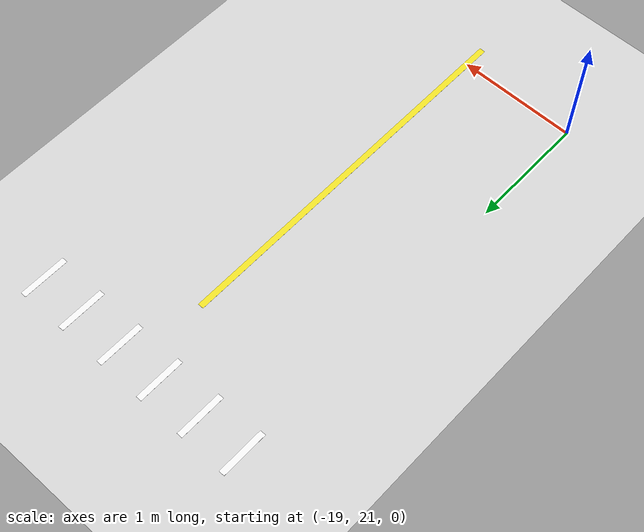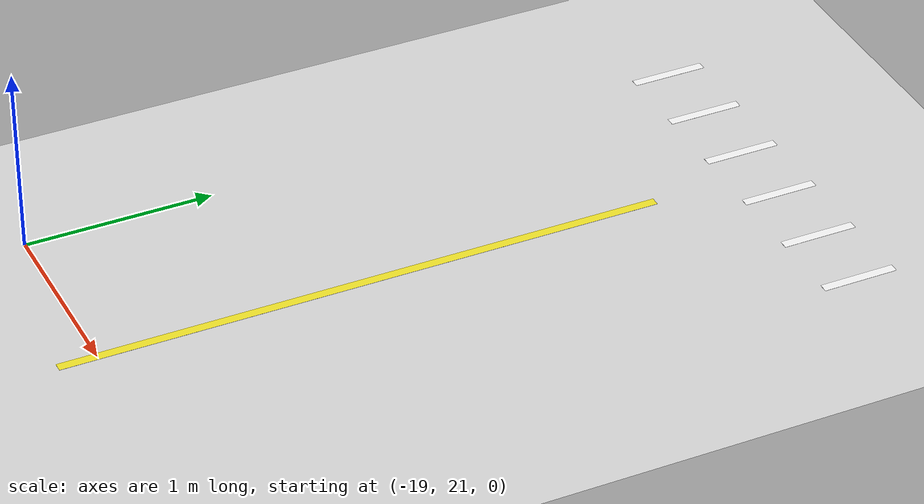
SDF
<sdf version="1.6">
 <world name="default">
  <model name="ground_plane">
   <static>1</static>
   <link name="link">
    <collision name="collision">
     <geometry><plane><normal>0 0 1</normal><size>100 100</size></plane></geometry>
     <surface><friction><ode><mu>100</mu><mu2>50</mu2></ode></friction></surface>
    </collision>
    <visual name="visual">
     <cast_shadows>0</cast_shadows>
     <geometry><plane><normal>0 0 1</normal><size>100 100</size></plane></geometry>
     <material>
      <script><uri>file://media/materials/scripts/gazebo.material</uri><name>Gazebo/Grey</name></script>
     </material>
    </visual>
   </link>
  </model>
  <model name="line320cm_10">
   <link name="link_0">
    <inertial>
     <mass>1</mass>
     <inertia>
      <ixx>0.166667</ixx>
      <ixy>0</ixy>
      <ixz>0</ixz>
      <iyy>0.166667</iyy>
      <iyz>0</iyz>
      <izz>0.166667</izz>
     </inertia>
    </inertial>
    <visual name="visual">
     <geometry><box><size>3.2 0.05 0.001</size></box></geometry>
     <material>
      <lighting>1</lighting>
      <script><uri>file://media/materials/scripts/gazebo.material</uri><name>Gazebo/Yellow</name></script>
     </material>
    </visual>
    <collision name="collision">
     <geometry><box><size>3.2 0.05 1e-05</size></box></geometry>
     <surface>
      <friction>
       <ode><mu>1</mu><mu2>1</mu2><fdir1>0 0 0</fdir1><slip1>0</slip1><slip2>0</slip2></ode>
       <torsional>
        <coefficient>1</coefficient>
        <patch_radius>0</patch_radius>
        <surface_radius>0</surface_radius>
        <use_patch_radius>1</use_patch_radius>
        <ode><slip>0</slip></ode>
       </torsional>
      </friction>
      <bounce><restitution_coefficient>0</restitution_coefficient><threshold>1e+06</threshold></bounce>
      <contact>
       <collide_without_contact>0</collide_without_contact>
       <collide_without_contact_bitmask>1</collide_without_contact_bitmask>
       <collide_bitmask>1</collide_bitmask>
       <ode>
        <soft_cfm>0</soft_cfm>
        <soft_erp>0.2</soft_erp>
        <kp>1e+13</kp>
        <kd>1</kd>
        <max_vel>0.01</max_vel>
        <min_depth>0</min_depth>
       </ode>
       <bullet>
        <split_impulse>1</split_impulse>
        <split_impulse_penetration_threshold>-0.01</split_impulse_penetration_threshold>
        <soft_cfm>0</soft_cfm>
        <soft_erp>0.2</soft_erp>
        <kp>1e+13</kp>
        <kd>1</kd>
       </bullet>
      </contact>
     </surface>
    </collision>
   </link>
   <static>1</static>
   <pose>-18 22.4 0 0 -0 1.5708</pose>
  </model>
  <model name="zebra_crossing_40cmx200cm_10">
   <link name="link_2">
    <inertial>
     <mass>1</mass>
     <inertia>
      <ixx>0.166667</ixx>
      <ixy>0</ixy>
      <ixz>0</ixz>
      <iyy>0.166667</iyy>
      <iyz>0</iyz>
      <izz>0.166667</izz>
     </inertia>
    </inertial>
    <visual name="ModelPreview_5::link_2::visual_1">
     <pose>-0.2 0 0 0 -0 0</pose>
     <geometry><box><size>0.05 0.4 0.001</size></box></geometry>
     <material>
      <lighting>1</lighting>
      <script><uri>file://media/materials/scripts/gazebo.material</uri><name>Gazebo/White</name></script>
     </material>
    </visual>
    <visual name="ModelPreview_5::link_2::visual_3">
     <pose>-0.6 0 0 0 -0 0</pose>
     <geometry><box><size>0.05 0.4 0.001</size></box></geometry>
     <material>
      <lighting>1</lighting>
      <script><uri>file://media/materials/scripts/gazebo.material</uri><name>Gazebo/White</name></script>
     </material>
    </visual>
    <visual name="ModelPreview_5::link_2::visual_4">
     <pose>1 0 0 0 -0 0</pose>
     <geometry><box><size>0.05 0.4 0.001</size></box></geometry>
     <material>
      <lighting>1</lighting>
      <script><uri>file://media/materials/scripts/gazebo.material</uri><name>Gazebo/White</name></script>
     </material>
    </visual>
    <visual name="visual">
     <pose>0.2 0 0 0 -0 0</pose>
     <geometry><box><size>0.05 0.4 0.001</size></box></geometry>
     <material>
      <lighting>1</lighting>
      <script><uri>file://media/materials/scripts/gazebo.material</uri><name>Gazebo/White</name></script>
     </material>
    </visual>
    <visual name="ModelPreview_5::link_2::visual_5">
     <pose>-1 0 0 0 -0 0</pose>
     <geometry><box><size>0.05 0.4 0.001</size></box></geometry>
     <material>
      <lighting>1</lighting>
      <script><uri>file://media/materials/scripts/gazebo.material</uri><name>Gazebo/White</name></script>
     </material>
    </visual>
    <visual name="ModelPreview_5::link_2::visual_2">
     <pose>0.6 0 0 0 -0 0</pose>
     <geometry><box><size>0.05 0.4 0.001</size></box></geometry>
     <material>
      <lighting>1</lighting>
      <script><uri>file://media/materials/scripts/gazebo.material</uri><name>Gazebo/White</name></script>
     </material>
    </visual>
    <collision name="collision_5">
     <pose>-1 0 0 0 -0 0</pose>
     <geometry><box><size>0.05 0.4 1e-05</size></box></geometry>
     <surface>
      <friction>
       <ode><mu>1</mu><mu2>1</mu2><fdir1>0 0 0</fdir1><slip1>0</slip1><slip2>0</slip2></ode>
       <torsional>
        <coefficient>1</coefficient>
        <patch_radius>0</patch_radius>
        <surface_radius>0</surface_radius>
        <use_patch_radius>1</use_patch_radius>
        <ode><slip>0</slip></ode>
       </torsional>
      </friction>
      <bounce><restitution_coefficient>0</restitution_coefficient><threshold>1e+06</threshold></bounce>
      <contact>
       <collide_without_contact>0</collide_without_contact>
       <collide_without_contact_bitmask>1</collide_without_contact_bitmask>
       <collide_bitmask>1</collide_bitmask>
       <ode>
        <soft_cfm>0</soft_cfm>
        <soft_erp>0.2</soft_erp>
        <kp>1e+13</kp>
        <kd>1</kd>
        <max_vel>0.01</max_vel>
        <min_depth>0</min_depth>
       </ode>
       <bullet>
        <split_impulse>1</split_impulse>
        <split_impulse_penetration_threshold>-0.01</split_impulse_penetration_threshold>
        <soft_cfm>0</soft_cfm>
        <soft_erp>0.2</soft_erp>
        <kp>1e+13</kp>
        <kd>1</kd>
       </bullet>
      </contact>
     </surface>
    </collision>
    <collision name="collision">
     <pose>0.2 0 0 0 -0 0</pose>
     <geometry><box><size>0.05 0.4 1e-05</size></box></geometry>
     <surface>
      <friction>
       <ode><mu>1</mu><mu2>1</mu2><fdir1>0 0 0</fdir1><slip1>0</slip1><slip2>0</slip2></ode>
       <torsional>
        <coefficient>1</coefficient>
        <patch_radius>0</patch_radius>
        <surface_radius>0</surface_radius>
        <use_patch_radius>1</use_patch_radius>
        <ode><slip>0</slip></ode>
       </torsional>
      </friction>
      <bounce><restitution_coefficient>0</restitution_coefficient><threshold>1e+06</threshold></bounce>
      <contact>
       <collide_without_contact>0</collide_without_contact>
       <collide_without_contact_bitmask>1</collide_without_contact_bitmask>
       <collide_bitmask>1</collide_bitmask>
       <ode>
        <soft_cfm>0</soft_cfm>
        <soft_erp>0.2</soft_erp>
        <kp>1e+13</kp>
        <kd>1</kd>
        <max_vel>0.01</max_vel>
        <min_depth>0</min_depth>
       </ode>
       <bullet>
        <split_impulse>1</split_impulse>
        <split_impulse_penetration_threshold>-0.01</split_impulse_penetration_threshold>
        <soft_cfm>0</soft_cfm>
        <soft_erp>0.2</soft_erp>
        <kp>1e+13</kp>
        <kd>1</kd>
       </bullet>
      </contact>
     </surface>
    </collision>
    <collision name="collision_3">
     <pose>-0.6 0 0 0 -0 0</pose>
     <geometry><box><size>0.05 0.4 1e-05</size></box></geometry>
     <surface>
      <friction>
       <ode><mu>1</mu><mu2>1</mu2><fdir1>0 0 0</fdir1><slip1>0</slip1><slip2>0</slip2></ode>
       <torsional>
        <coefficient>1</coefficient>
        <patch_radius>0</patch_radius>
        <surface_radius>0</surface_radius>
        <use_patch_radius>1</use_patch_radius>
        <ode><slip>0</slip></ode>
       </torsional>
      </friction>
      <bounce><restitution_coefficient>0</restitution_coefficient><threshold>1e+06</threshold></bounce>
      <contact>
       <collide_without_contact>0</collide_without_contact>
       <collide_without_contact_bitmask>1</collide_without_contact_bitmask>
       <collide_bitmask>1</collide_bitmask>
       <ode>
        <soft_cfm>0</soft_cfm>
        <soft_erp>0.2</soft_erp>
        <kp>1e+13</kp>
        <kd>1</kd>
        <max_vel>0.01</max_vel>
        <min_depth>0</min_depth>
       </ode>
       <bullet>
        <split_impulse>1</split_impulse>
        <split_impulse_penetration_threshold>-0.01</split_impulse_penetration_threshold>
        <soft_cfm>0</soft_cfm>
        <soft_erp>0.2</soft_erp>
        <kp>1e+13</kp>
        <kd>1</kd>
       </bullet>
      </contact>
     </surface>
    </collision>
    <collision name="collision_4">
     <pose>1 0 0 0 -0 0</pose>
     <geometry><box><size>0.05 0.4 1e-05</size></box></geometry>
     <surface>
      <friction>
       <ode><mu>1</mu><mu2>1</mu2><fdir1>0 0 0</fdir1><slip1>0</slip1><slip2>0</slip2></ode>
       <torsional>
        <coefficient>1</coefficient>
        <patch_radius>0</patch_radius>
        <surface_radius>0</surface_radius>
        <use_patch_radius>1</use_patch_radius>
        <ode><slip>0</slip></ode>
       </torsional>
      </friction>
      <bounce><restitution_coefficient>0</restitution_coefficient><threshold>1e+06</threshold></bounce>
      <contact>
       <collide_without_contact>0</collide_without_contact>
       <collide_without_contact_bitmask>1</collide_without_contact_bitmask>
       <collide_bitmask>1</collide_bitmask>
       <ode>
        <soft_cfm>0</soft_cfm>
        <soft_erp>0.2</soft_erp>
        <kp>1e+13</kp>
        <kd>1</kd>
        <max_vel>0.01</max_vel>
        <min_depth>0</min_depth>
       </ode>
       <bullet>
        <split_impulse>1</split_impulse>
        <split_impulse_penetration_threshold>-0.01</split_impulse_penetration_threshold>
        <soft_cfm>0</soft_cfm>
        <soft_erp>0.2</soft_erp>
        <kp>1e+13</kp>
        <kd>1</kd>
       </bullet>
      </contact>
     </surface>
    </collision>
    <collision name="collision_2">
     <pose>0.6 0 0 0 -0 0</pose>
     <geometry><box><size>0.05 0.4 1e-05</size></box></geometry>
     <surface>
      <friction>
       <ode><mu>1</mu><mu2>1</mu2><fdir1>0 0 0</fdir1><slip1>0</slip1><slip2>0</slip2></ode>
       <torsional>
        <coefficient>1</coefficient>
        <patch_radius>0</patch_radius>
        <surface_radius>0</surface_radius>
        <use_patch_radius>1</use_patch_radius>
        <ode><slip>0</slip></ode>
       </torsional>
      </friction>
      <bounce><restitution_coefficient>0</restitution_coefficient><threshold>1e+06</threshold></bounce>
      <contact>
       <collide_without_contact>0</collide_without_contact>
       <collide_without_contact_bitmask>1</collide_without_contact_bitmask>
       <collide_bitmask>1</collide_bitmask>
       <ode>
        <soft_cfm>0</soft_cfm>
        <soft_erp>0.2</soft_erp>
        <kp>1e+13</kp>
        <kd>1</kd>
        <max_vel>0.01</max_vel>
        <min_depth>0</min_depth>
       </ode>
       <bullet>
        <split_impulse>1</split_impulse>
        <split_impulse_penetration_threshold>-0.01</split_impulse_penetration_threshold>
        <soft_cfm>0</soft_cfm>
        <soft_erp>0.2</soft_erp>
        <kp>1e+13</kp>
        <kd>1</kd>
       </bullet>
      </contact>
     </surface>
    </collision>
    <collision name="collision_1">
     <pose>-0.2 0 0 0 -0 0</pose>
     <geometry><box><size>0.05 0.4 1e-05</size></box></geometry>
     <surface>
      <friction>
       <ode><mu>1</mu><mu2>1</mu2><fdir1>0 0 0</fdir1><slip1>0</slip1><slip2>0</slip2></ode>
       <torsional>
        <coefficient>1</coefficient>
        <patch_radius>0</patch_radius>
        <surface_radius>0</surface_radius>
        <use_patch_radius>1</use_patch_radius>
        <ode><slip>0</slip></ode>
       </torsional>
      </friction>
      <bounce><restitution_coefficient>0</restitution_coefficient><threshold>1e+06</threshold></bounce>
      <contact>
       <collide_without_contact>0</collide_without_contact>
       <collide_without_contact_bitmask>1</collide_without_contact_bitmask>
       <collide_bitmask>1</collide_bitmask>
       <ode>
        <soft_cfm>0</soft_cfm>
        <soft_erp>0.2</soft_erp>
        <kp>1e+13</kp>
        <kd>1</kd>
        <max_vel>0.01</max_vel>
        <min_depth>0</min_depth>
       </ode>
       <bullet>
        <split_impulse>1</split_impulse>
        <split_impulse_penetration_threshold>-0.01</split_impulse_penetration_threshold>
        <soft_cfm>0</soft_cfm>
        <soft_erp>0.2</soft_erp>
        <kp>1e+13</kp>
        <kd>1</kd>
       </bullet>
      </contact>
     </surface>
    </collision>
   </link>
   <static>1</static>
   <pose>-18 24.6 0 0 -0 0</pose>
  </model>
 </world>
</sdf>
